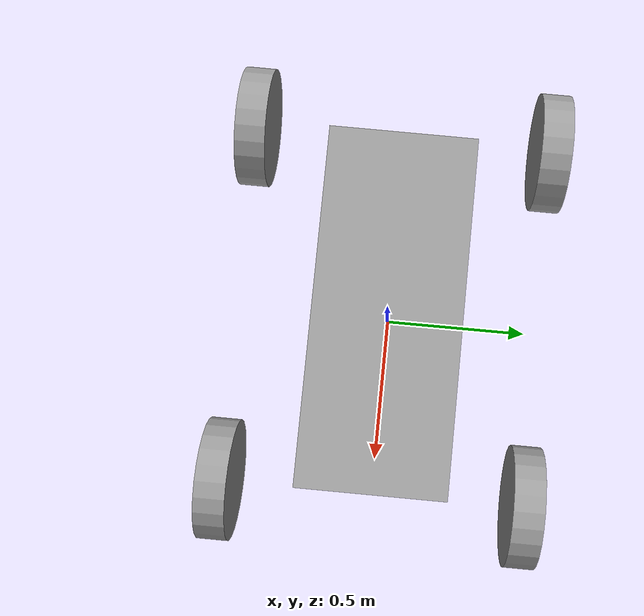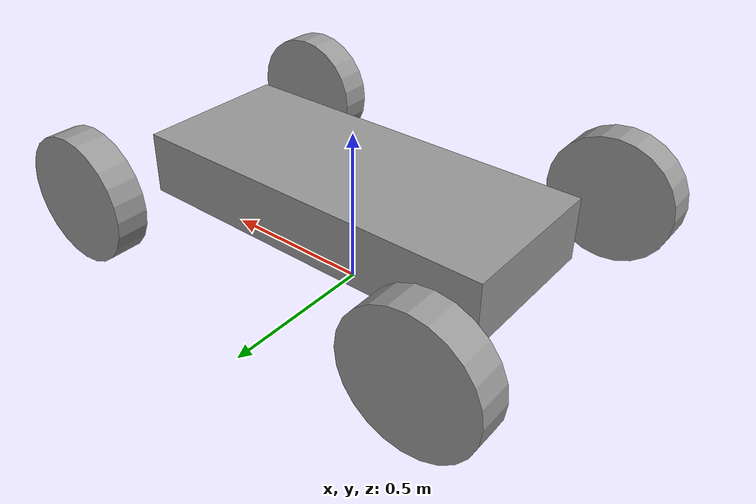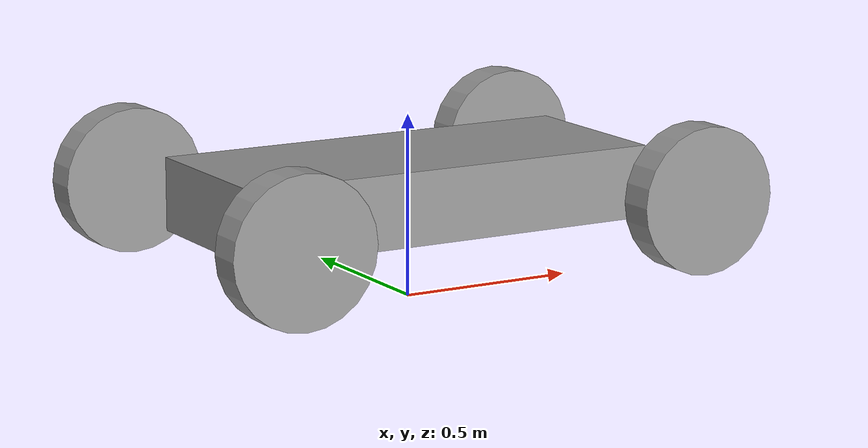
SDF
<?xml version='1.0'?>
<sdf version='1.7'>
  <model name='model'>
    <link name='link_0'>
      <inertial>
        <mass>269.063</mass>
        <inertia>
          <ixx>5.84323</ixx>
          <ixy>0</ixy>
          <ixz>0</ixz>
          <iyy>25.0903</iyy>
          <iyz>0</iyz>
          <izz>29.0614</izz>
        </inertia>
        <pose>0 0 0 0 -0 0</pose>
      </inertial>
      <pose>-0.000331 0 0.3 0 -0 0</pose>
      <gravity>1</gravity>
      <self_collide>0</self_collide>
      <kinematic>0</kinematic>
      <enable_wind>0</enable_wind>
      <visual name='visual'>
        <pose>0 0 0 0 -0 0</pose>
        <geometry>
          <box>
            <size>1.2 0.5 0.2</size>
          </box>
        </geometry>
        <material>
          <lighting>1</lighting>
          <script>
            <uri>file://media/materials/scripts/gazebo.material</uri>
            <name>Gazebo/Grey</name>
          </script>
          <shader type='pixel'>
            <normal_map>__default__</normal_map>
          </shader>
          <ambient>0.3 0.3 0.3 1</ambient>
          <diffuse>0.7 0.7 0.7 1</diffuse>
          <specular>0.01 0.01 0.01 1</specular>
          <emissive>0 0 0 1</emissive>
        </material>
        <transparency>0</transparency>
        <cast_shadows>1</cast_shadows>
      </visual>
      <collision name='collision'>
        <laser_retro>0</laser_retro>
        <max_contacts>10</max_contacts>
        <pose>0 0 0 0 -0 0</pose>
        <geometry>
          <box>
            <size>1.2 0.5 0.2</size>
          </box>
        </geometry>
        <surface>
          <friction>
            <ode>
              <mu>1</mu>
              <mu2>1</mu2>
              <fdir1>0 0 0</fdir1>
              <slip1>0</slip1>
              <slip2>0</slip2>
            </ode>
            <torsional>
              <coefficient>1</coefficient>
              <patch_radius>0</patch_radius>
              <surface_radius>0</surface_radius>
              <use_patch_radius>1</use_patch_radius>
              <ode>
                <slip>0</slip>
              </ode>
            </torsional>
          </friction>
          <bounce>
            <restitution_coefficient>0</restitution_coefficient>
            <threshold>1e+06</threshold>
          </bounce>
          <contact>
            <collide_without_contact>0</collide_without_contact>
            <collide_without_contact_bitmask>1</collide_without_contact_bitmask>
            <collide_bitmask>1</collide_bitmask>
            <ode>
              <soft_cfm>0</soft_cfm>
              <soft_erp>0.2</soft_erp>
              <kp>1e+13</kp>
              <kd>1</kd>
              <max_vel>0.01</max_vel>
              <min_depth>0</min_depth>
            </ode>
            <bullet>
              <split_impulse>1</split_impulse>
              <split_impulse_penetration_threshold>-0.01</split_impulse_penetration_threshold>
              <soft_cfm>0</soft_cfm>
              <soft_erp>0.2</soft_erp>
              <kp>1e+13</kp>
              <kd>1</kd>
            </bullet>
          </contact>
        </surface>
      </collision>
    </link>
    <link name='link_4'>
      <inertial>
        <mass>0.266198</mass>
        <inertia>
          <ixx>0.0182092</ixx>
          <ixy>0</ixy>
          <ixz>0</ixz>
          <iyy>0.0182092</iyy>
          <iyz>0</iyz>
          <izz>0.0332748</izz>
        </inertia>
        <pose>0 0 0 0 -0 0</pose>
      </inertial>
      <pose>-0.599601 0.5 0.3 1.5708 -0 0</pose>
      <gravity>1</gravity>
      <self_collide>0</self_collide>
      <kinematic>0</kinematic>
      <enable_wind>0</enable_wind>
      <visual name='visual'>
        <pose>0 0 0 0 -0 0</pose>
        <geometry>
          <cylinder>
            <radius>0.2</radius>
            <length>0.1</length>
          </cylinder>
        </geometry>
        <material>
          <lighting>1</lighting>
          <script>
            <uri>file://media/materials/scripts/gazebo.material</uri>
            <name>Gazebo/Grey</name>
          </script>
          <shader type='pixel'>
            <normal_map>__default__</normal_map>
          </shader>
          <ambient>0.3 0.3 0.3 1</ambient>
          <diffuse>0.7 0.7 0.7 1</diffuse>
          <specular>0.01 0.01 0.01 1</specular>
          <emissive>0 0 0 1</emissive>
        </material>
        <transparency>0</transparency>
        <cast_shadows>1</cast_shadows>
      </visual>
      <collision name='collision'>
        <laser_retro>0</laser_retro>
        <max_contacts>10</max_contacts>
        <pose>0 0 0 0 -0 0</pose>
        <geometry>
          <cylinder>
            <radius>0.2</radius>
            <length>0.1</length>
          </cylinder>
        </geometry>
        <surface>
          <friction>
            <ode>
              <mu>1</mu>
              <mu2>1</mu2>
              <fdir1>0 0 0</fdir1>
              <slip1>0</slip1>
              <slip2>0</slip2>
            </ode>
            <torsional>
              <coefficient>1</coefficient>
              <patch_radius>0</patch_radius>
              <surface_radius>0</surface_radius>
              <use_patch_radius>1</use_patch_radius>
              <ode>
                <slip>0</slip>
              </ode>
            </torsional>
          </friction>
          <bounce>
            <restitution_coefficient>0</restitution_coefficient>
            <threshold>1e+06</threshold>
          </bounce>
          <contact>
            <collide_without_contact>0</collide_without_contact>
            <collide_without_contact_bitmask>1</collide_without_contact_bitmask>
            <collide_bitmask>1</collide_bitmask>
            <ode>
              <soft_cfm>0</soft_cfm>
              <soft_erp>0.2</soft_erp>
              <kp>1e+13</kp>
              <kd>1</kd>
              <max_vel>0.01</max_vel>
              <min_depth>0</min_depth>
            </ode>
            <bullet>
              <split_impulse>1</split_impulse>
              <split_impulse_penetration_threshold>-0.01</split_impulse_penetration_threshold>
              <soft_cfm>0</soft_cfm>
              <soft_erp>0.2</soft_erp>
              <kp>1e+13</kp>
              <kd>1</kd>
            </bullet>
          </contact>
        </surface>
      </collision>
    </link>
    <link name='link_4_clone'>
      <inertial>
        <mass>0.266198</mass>
        <inertia>
          <ixx>0.0182092</ixx>
          <ixy>0</ixy>
          <ixz>0</ixz>
          <iyy>0.0182092</iyy>
          <iyz>0</iyz>
          <izz>0.0332748</izz>
        </inertia>
        <pose>0 0 0 0 -0 0</pose>
      </inertial>
      <pose>-0.6 -0.5 0.3 1.5708 -0 0</pose>
      <gravity>1</gravity>
      <self_collide>0</self_collide>
      <kinematic>0</kinematic>
      <enable_wind>0</enable_wind>
      <visual name='visual'>
        <pose>0 0 0 0 -0 0</pose>
        <geometry>
          <cylinder>
            <radius>0.2</radius>
            <length>0.1</length>
          </cylinder>
        </geometry>
        <material>
          <lighting>1</lighting>
          <script>
            <uri>file://media/materials/scripts/gazebo.material</uri>
            <name>Gazebo/Grey</name>
          </script>
          <shader type='pixel'>
            <normal_map>__default__</normal_map>
          </shader>
          <ambient>0.3 0.3 0.3 1</ambient>
          <diffuse>0.7 0.7 0.7 1</diffuse>
          <specular>0.01 0.01 0.01 1</specular>
          <emissive>0 0 0 1</emissive>
        </material>
        <transparency>0</transparency>
        <cast_shadows>1</cast_shadows>
      </visual>
      <collision name='collision'>
        <laser_retro>0</laser_retro>
        <max_contacts>10</max_contacts>
        <pose>0 0 0 0 -0 0</pose>
        <geometry>
          <cylinder>
            <radius>0.2</radius>
            <length>0.1</length>
          </cylinder>
        </geometry>
        <surface>
          <friction>
            <ode>
              <mu>1</mu>
              <mu2>1</mu2>
              <fdir1>0 0 0</fdir1>
              <slip1>0</slip1>
              <slip2>0</slip2>
            </ode>
            <torsional>
              <coefficient>1</coefficient>
              <patch_radius>0</patch_radius>
              <surface_radius>0</surface_radius>
              <use_patch_radius>1</use_patch_radius>
              <ode>
                <slip>0</slip>
              </ode>
            </torsional>
          </friction>
          <bounce>
            <restitution_coefficient>0</restitution_coefficient>
            <threshold>1e+06</threshold>
          </bounce>
          <contact>
            <collide_without_contact>0</collide_without_contact>
            <collide_without_contact_bitmask>1</collide_without_contact_bitmask>
            <collide_bitmask>1</collide_bitmask>
            <ode>
              <soft_cfm>0</soft_cfm>
              <soft_erp>0.2</soft_erp>
              <kp>1e+13</kp>
              <kd>1</kd>
              <max_vel>0.01</max_vel>
              <min_depth>0</min_depth>
            </ode>
            <bullet>
              <split_impulse>1</split_impulse>
              <split_impulse_penetration_threshold>-0.01</split_impulse_penetration_threshold>
              <soft_cfm>0</soft_cfm>
              <soft_erp>0.2</soft_erp>
              <kp>1e+13</kp>
              <kd>1</kd>
            </bullet>
          </contact>
        </surface>
      </collision>
    </link>
    <link name='link_4_clone_0'>
      <inertial>
        <mass>0.266198</mass>
        <inertia>
          <ixx>0.0182092</ixx>
          <ixy>0</ixy>
          <ixz>0</ixz>
          <iyy>0.0182092</iyy>
          <iyz>0</iyz>
          <izz>0.0332748</izz>
        </inertia>
        <pose>0 0 0 0 -0 0</pose>
      </inertial>
      <pose>0.6 0.5 0.300004 1.5708 -0 0</pose>
      <gravity>1</gravity>
      <self_collide>0</self_collide>
      <kinematic>0</kinematic>
      <enable_wind>0</enable_wind>
      <visual name='visual'>
        <pose>0 0 0 0 -0 0</pose>
        <geometry>
          <cylinder>
            <radius>0.2</radius>
            <length>0.1</length>
          </cylinder>
        </geometry>
        <material>
          <lighting>1</lighting>
          <script>
            <uri>file://media/materials/scripts/gazebo.material</uri>
            <name>Gazebo/Grey</name>
          </script>
          <shader type='pixel'>
            <normal_map>__default__</normal_map>
          </shader>
          <ambient>0.3 0.3 0.3 1</ambient>
          <diffuse>0.7 0.7 0.7 1</diffuse>
          <specular>0.01 0.01 0.01 1</specular>
          <emissive>0 0 0 1</emissive>
        </material>
        <transparency>0</transparency>
        <cast_shadows>1</cast_shadows>
      </visual>
      <collision name='collision'>
        <laser_retro>0</laser_retro>
        <max_contacts>10</max_contacts>
        <pose>0 0 0 0 -0 0</pose>
        <geometry>
          <cylinder>
            <radius>0.2</radius>
            <length>0.1</length>
          </cylinder>
        </geometry>
        <surface>
          <friction>
            <ode>
              <mu>1</mu>
              <mu2>1</mu2>
              <fdir1>0 0 0</fdir1>
              <slip1>0</slip1>
              <slip2>0</slip2>
            </ode>
            <torsional>
              <coefficient>1</coefficient>
              <patch_radius>0</patch_radius>
              <surface_radius>0</surface_radius>
              <use_patch_radius>1</use_patch_radius>
              <ode>
                <slip>0</slip>
              </ode>
            </torsional>
          </friction>
          <bounce>
            <restitution_coefficient>0</restitution_coefficient>
            <threshold>1e+06</threshold>
          </bounce>
          <contact>
            <collide_without_contact>0</collide_without_contact>
            <collide_without_contact_bitmask>1</collide_without_contact_bitmask>
            <collide_bitmask>1</collide_bitmask>
            <ode>
              <soft_cfm>0</soft_cfm>
              <soft_erp>0.2</soft_erp>
              <kp>1e+13</kp>
              <kd>1</kd>
              <max_vel>0.01</max_vel>
              <min_depth>0</min_depth>
            </ode>
            <bullet>
              <split_impulse>1</split_impulse>
              <split_impulse_penetration_threshold>-0.01</split_impulse_penetration_threshold>
              <soft_cfm>0</soft_cfm>
              <soft_erp>0.2</soft_erp>
              <kp>1e+13</kp>
              <kd>1</kd>
            </bullet>
          </contact>
        </surface>
      </collision>
    </link>
    <link name='link_4_clone_1'>
      <inertial>
        <mass>0.266198</mass>
        <inertia>
          <ixx>0.0182092</ixx>
          <ixy>0</ixy>
          <ixz>0</ixz>
          <iyy>0.0182092</iyy>
          <iyz>0</iyz>
          <izz>0.0332748</izz>
        </inertia>
        <pose>0 0 0 0 -0 0</pose>
      </inertial>
      <pose>0.6 -0.5 0.3 1.5708 -0 0</pose>
      <gravity>1</gravity>
      <self_collide>0</self_collide>
      <kinematic>0</kinematic>
      <enable_wind>0</enable_wind>
      <visual name='visual'>
        <pose>0 0 0 0 -0 0</pose>
        <geometry>
          <cylinder>
            <radius>0.2</radius>
            <length>0.1</length>
          </cylinder>
        </geometry>
        <material>
          <lighting>1</lighting>
          <script>
            <uri>file://media/materials/scripts/gazebo.material</uri>
            <name>Gazebo/Grey</name>
          </script>
          <shader type='pixel'>
            <normal_map>__default__</normal_map>
          </shader>
          <ambient>0.3 0.3 0.3 1</ambient>
          <diffuse>0.7 0.7 0.7 1</diffuse>
          <specular>0.01 0.01 0.01 1</specular>
          <emissive>0 0 0 1</emissive>
        </material>
        <transparency>0</transparency>
        <cast_shadows>1</cast_shadows>
      </visual>
      <collision name='collision'>
        <laser_retro>0</laser_retro>
        <max_contacts>10</max_contacts>
        <pose>0 0 0 0 -0 0</pose>
        <geometry>
          <cylinder>
            <radius>0.2</radius>
            <length>0.1</length>
          </cylinder>
        </geometry>
        <surface>
          <friction>
            <ode>
              <mu>1</mu>
              <mu2>1</mu2>
              <fdir1>0 0 0</fdir1>
              <slip1>0</slip1>
              <slip2>0</slip2>
            </ode>
            <torsional>
              <coefficient>1</coefficient>
              <patch_radius>0</patch_radius>
              <surface_radius>0</surface_radius>
              <use_patch_radius>1</use_patch_radius>
              <ode>
                <slip>0</slip>
              </ode>
            </torsional>
          </friction>
          <bounce>
            <restitution_coefficient>0</restitution_coefficient>
            <threshold>1e+06</threshold>
          </bounce>
          <contact>
            <collide_without_contact>0</collide_without_contact>
            <collide_without_contact_bitmask>1</collide_without_contact_bitmask>
            <collide_bitmask>1</collide_bitmask>
            <ode>
              <soft_cfm>0</soft_cfm>
              <soft_erp>0.2</soft_erp>
              <kp>1e+13</kp>
              <kd>1</kd>
              <max_vel>0.01</max_vel>
              <min_depth>0</min_depth>
            </ode>
            <bullet>
              <split_impulse>1</split_impulse>
              <split_impulse_penetration_threshold>-0.01</split_impulse_penetration_threshold>
              <soft_cfm>0</soft_cfm>
              <soft_erp>0.2</soft_erp>
              <kp>1e+13</kp>
              <kd>1</kd>
            </bullet>
          </contact>
        </surface>
      </collision>
    </link>
    <static>0</static>
    <allow_auto_disable>1</allow_auto_disable>
  </model>
</sdf>
